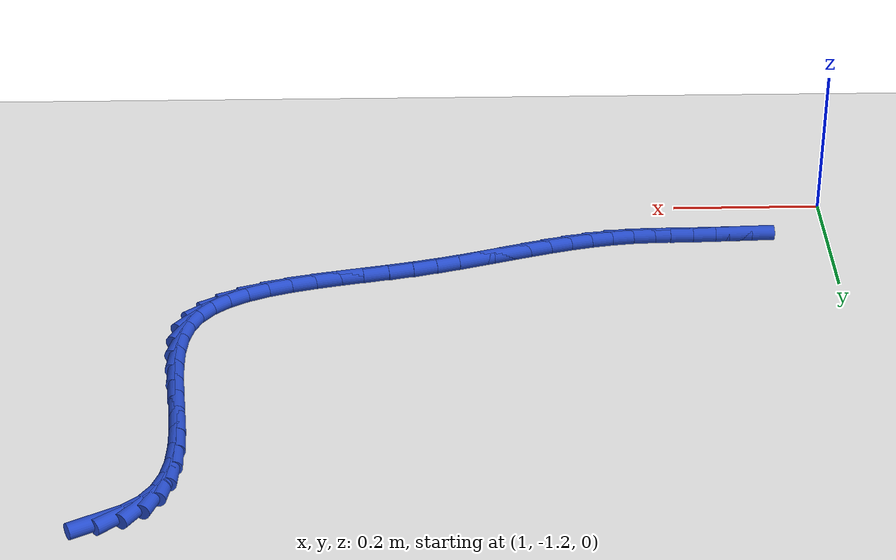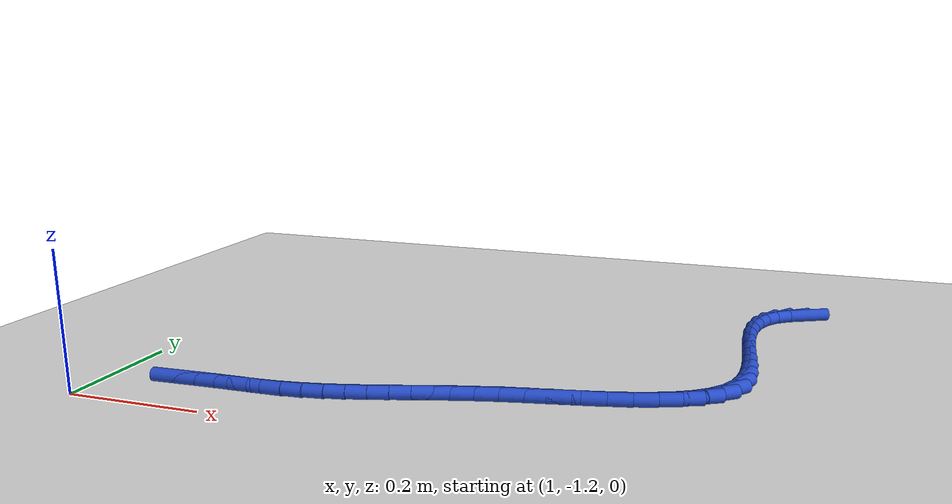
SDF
<sdf version="1.6">
 <world name="default">
  <model name="ground_plane">
   <static>1</static>
   <link name="link">
    <collision name="collision">
     <geometry><plane><normal>0 0 1</normal><size>100 100</size></plane></geometry>
     <surface><friction><ode><mu>100</mu><mu2>50</mu2></ode></friction></surface>
    </collision>
    <visual name="visual">
     <cast_shadows>0</cast_shadows>
     <geometry><plane><normal>0 0 1</normal><size>100 100</size></plane></geometry>
     <material>
      <script><uri>file://media/materials/scripts/gazebo.material</uri><name>Gazebo/WhiteGlow</name></script>
     </material>
    </visual>
   </link>
  </model>
  <model name="line">
   <link name="link_142">
    <pose>1.914173436486192 -0.504851512529708 0.01 0 1.57 0.502249874093673</pose>
    <collision name="collision">
     <geometry><cylinder><radius>0.01</radius><length>0.08</length></cylinder></geometry>
    </collision>
    <visual name="visual">
     <material>
      <script><name>Gazebo/Blue</name><uri>file://media/materials/scripts/gazebo.material</uri></script>
     </material>
     <geometry><cylinder><radius>0.01</radius><length>0.08</length></cylinder></geometry>
    </visual>
   </link>
   <link name="link_143">
    <pose>1.8893927052550739 -0.5184617698771049 0.01 0 1.57 0.7144338257849775</pose>
    <collision name="collision">
     <geometry><cylinder><radius>0.01</radius><length>0.08</length></cylinder></geometry>
    </collision>
    <visual name="visual">
     <material>
      <script><name>Gazebo/Blue</name><uri>file://media/materials/scripts/gazebo.material</uri></script>
     </material>
     <geometry><cylinder><radius>0.01</radius><length>0.08</length></cylinder></geometry>
    </visual>
   </link>
   <link name="link_144">
    <pose>1.8695080593585607 -0.5357070809737432 0.01 0 1.57 0.9855192613876577</pose>
    <collision name="collision">
     <geometry><cylinder><radius>0.01</radius><length>0.08</length></cylinder></geometry>
    </collision>
    <visual name="visual">
     <material>
      <script><name>Gazebo/Blue</name><uri>file://media/materials/scripts/gazebo.material</uri></script>
     </material>
     <geometry><cylinder><radius>0.01</radius><length>0.08</length></cylinder></geometry>
    </visual>
   </link>
   <link name="link_145">
    <pose>1.8553305297005898 -0.5570994758530008 0.01 0 1.57 1.2287504676466436</pose>
    <collision name="collision">
     <geometry><cylinder><radius>0.01</radius><length>0.08</length></cylinder></geometry>
    </collision>
    <visual name="visual">
     <material>
      <script><name>Gazebo/Blue</name><uri>file://media/materials/scripts/gazebo.material</uri></script>
     </material>
     <geometry><cylinder><radius>0.01</radius><length>0.08</length></cylinder></geometry>
    </visual>
   </link>
   <link name="link_146">
    <pose>1.8463702003581963 -0.5822660839333523 0.01 0 1.57 1.4084205650651311</pose>
    <collision name="collision">
     <geometry><cylinder><radius>0.01</radius><length>0.08</length></cylinder></geometry>
    </collision>
    <visual name="visual">
     <material>
      <script><name>Gazebo/Blue</name><uri>file://media/materials/scripts/gazebo.material</uri></script>
     </material>
     <geometry><cylinder><radius>0.01</radius><length>0.08</length></cylinder></geometry>
    </visual>
   </link>
   <link name="link_147">
    <pose>1.8417350597705493 -0.6105605302364459 0.01 0 1.57 1.5317569160823654</pose>
    <collision name="collision">
     <geometry><cylinder><radius>0.01</radius><length>0.08</length></cylinder></geometry>
    </collision>
    <visual name="visual">
     <material>
      <script><name>Gazebo/Blue</name><uri>file://media/materials/scripts/gazebo.material</uri></script>
     </material>
     <geometry><cylinder><radius>0.01</radius><length>0.08</length></cylinder></geometry>
    </visual>
   </link>
   <link name="link_148">
    <pose>1.8405329787711404 -0.6413363597888537 0.01 0 1.57 -1.5297639179016491</pose>
    <collision name="collision">
     <geometry><cylinder><radius>0.01</radius><length>0.08</length></cylinder></geometry>
    </collision>
    <visual name="visual">
     <material>
      <script><name>Gazebo/Blue</name><uri>file://media/materials/scripts/gazebo.material</uri></script>
     </material>
     <geometry><cylinder><radius>0.01</radius><length>0.08</length></cylinder></geometry>
    </visual>
   </link>
   <link name="link_149">
    <pose>1.841871828193461 -0.6739471176171508 0.01 0 1.57 -1.482631433325687</pose>
    <collision name="collision">
     <geometry><cylinder><radius>0.01</radius><length>0.08</length></cylinder></geometry>
    </collision>
    <visual name="visual">
     <material>
      <script><name>Gazebo/Blue</name><uri>file://media/materials/scripts/gazebo.material</uri></script>
     </material>
     <geometry><cylinder><radius>0.01</radius><length>0.08</length></cylinder></geometry>
    </visual>
   </link>
   <link name="link_150">
    <pose>1.8448594788710018 -0.7077463487479104 0.01 0 1.57 -1.4621925317500015</pose>
    <collision name="collision">
     <geometry><cylinder><radius>0.01</radius><length>0.08</length></cylinder></geometry>
    </collision>
    <visual name="visual">
     <material>
      <script><name>Gazebo/Blue</name><uri>file://media/materials/scripts/gazebo.material</uri></script>
     </material>
     <geometry><cylinder><radius>0.01</radius><length>0.08</length></cylinder></geometry>
    </visual>
   </link>
   <link name="link_151">
    <pose>1.8486038016372546 -0.7420875982077069 0.01 0 1.57 -1.4657752190315003</pose>
    <collision name="collision">
     <geometry><cylinder><radius>0.01</radius><length>0.08</length></cylinder></geometry>
    </collision>
    <visual name="visual">
     <material>
      <script><name>Gazebo/Blue</name><uri>file://media/materials/scripts/gazebo.material</uri></script>
     </material>
     <geometry><cylinder><radius>0.01</radius><length>0.08</length></cylinder></geometry>
    </visual>
   </link>
   <link name="link_152">
    <pose>1.8522126673257107 -0.7763244110231136 0.01 0 1.57 -1.4938629560605556</pose>
    <collision name="collision">
     <geometry><cylinder><radius>0.01</radius><length>0.08</length></cylinder></geometry>
    </collision>
    <visual name="visual">
     <material>
      <script><name>Gazebo/Blue</name><uri>file://media/materials/scripts/gazebo.material</uri></script>
     </material>
     <geometry><cylinder><radius>0.01</radius><length>0.08</length></cylinder></geometry>
    </visual>
   </link>
   <link name="link_153">
    <pose>1.8547939467698613 -0.8098103322207049 0.01 0 1.57 -1.5501824375173057</pose>
    <collision name="collision">
     <geometry><cylinder><radius>0.01</radius><length>0.08</length></cylinder></geometry>
    </collision>
    <visual name="visual">
     <material>
      <script><name>Gazebo/Blue</name><uri>file://media/materials/scripts/gazebo.material</uri></script>
     </material>
     <geometry><cylinder><radius>0.01</radius><length>0.08</length></cylinder></geometry>
    </visual>
   </link>
   <link name="link_154">
    <pose>1.855455510803198 -0.8418989068270543 0.01 0 1.57 1.4993489429522737</pose>
    <collision name="collision">
     <geometry><cylinder><radius>0.01</radius><length>0.08</length></cylinder></geometry>
    </collision>
    <visual name="visual">
     <material>
      <script><name>Gazebo/Blue</name><uri>file://media/materials/scripts/gazebo.material</uri></script>
     </material>
     <geometry><cylinder><radius>0.01</radius><length>0.08</length></cylinder></geometry>
    </visual>
   </link>
   <link name="link_155">
    <pose>1.8533052302592123 -0.8719436798687366 0.01 0 1.57 1.3599626258571125</pose>
    <collision name="collision">
     <geometry><cylinder><radius>0.01</radius><length>0.08</length></cylinder></geometry>
    </collision>
    <visual name="visual">
     <material>
      <script><name>Gazebo/Blue</name><uri>file://media/materials/scripts/gazebo.material</uri></script>
     </material>
     <geometry><cylinder><radius>0.01</radius><length>0.08</length></cylinder></geometry>
    </visual>
   </link>
   <link name="link_156">
    <pose>1.8474509759713953 -0.8992981963723239 0.01 0 1.57 1.1604871780150332</pose>
    <collision name="collision">
     <geometry><cylinder><radius>0.01</radius><length>0.08</length></cylinder></geometry>
    </collision>
    <visual name="visual">
     <material>
      <script><name>Gazebo/Blue</name><uri>file://media/materials/scripts/gazebo.material</uri></script>
     </material>
     <geometry><cylinder><radius>0.01</radius><length>0.08</length></cylinder></geometry>
    </visual>
   </link>
   <link name="link_157">
    <pose>1.8370026291247181 -0.9233174506579057 0.01 0 1.57 0.919939099110937</pose>
    <collision name="collision">
     <geometry><cylinder><radius>0.01</radius><length>0.08</length></cylinder></geometry>
    </collision>
    <visual name="visual">
     <material>
      <script><name>Gazebo/Blue</name><uri>file://media/materials/scripts/gazebo.material</uri></script>
     </material>
     <geometry><cylinder><radius>0.01</radius><length>0.08</length></cylinder></geometry>
    </visual>
   </link>
   <link name="link_158">
    <pose>1.8215037064311927 -0.9436690516125044 0.01 0 1.57 0.7051344208503111</pose>
    <collision name="collision">
     <geometry><cylinder><radius>0.01</radius><length>0.08</length></cylinder></geometry>
    </collision>
    <visual name="visual">
     <material>
      <script><name>Gazebo/Blue</name><uri>file://media/materials/scripts/gazebo.material</uri></script>
     </material>
     <geometry><cylinder><radius>0.01</radius><length>0.08</length></cylinder></geometry>
    </visual>
   </link>
   <link name="link_159">
    <pose>1.801468902727103 -0.9607207454730631 0.01 0 1.57 0.5361139585434486</pose>
    <collision name="collision">
     <geometry><cylinder><radius>0.01</radius><length>0.08</length></cylinder></geometry>
    </collision>
    <visual name="visual">
     <material>
      <script><name>Gazebo/Blue</name><uri>file://media/materials/scripts/gazebo.material</uri></script>
     </material>
     <geometry><cylinder><radius>0.01</radius><length>0.08</length></cylinder></geometry>
    </visual>
   </link>
   <link name="link_160">
    <pose>1.7775448918431593 -0.9749354241774967 0.01 0 1.57 0.41102521632800504</pose>
    <collision name="collision">
     <geometry><cylinder><radius>0.01</radius><length>0.08</length></cylinder></geometry>
    </collision>
    <visual name="visual">
     <material>
      <script><name>Gazebo/Blue</name><uri>file://media/materials/scripts/gazebo.material</uri></script>
     </material>
     <geometry><cylinder><radius>0.01</radius><length>0.08</length></cylinder></geometry>
    </visual>
   </link>
   <link name="link_161">
    <pose>1.7503783476100698 -0.9867759796637201 0.01 0 1.57 0.32200826210206196</pose>
    <collision name="collision">
     <geometry><cylinder><radius>0.01</radius><length>0.08</length></cylinder></geometry>
    </collision>
    <visual name="visual">
     <material>
      <script><name>Gazebo/Blue</name><uri>file://media/materials/scripts/gazebo.material</uri></script>
     </material>
     <geometry><cylinder><radius>0.01</radius><length>0.08</length></cylinder></geometry>
    </visual>
   </link>
   <link name="link_162">
    <pose>1.7206159438585436 -0.9967053038696486 0.01 0 1.57 0.26132534452642153</pose>
    <collision name="collision">
     <geometry><cylinder><radius>0.01</radius><length>0.08</length></cylinder></geometry>
    </collision>
    <visual name="visual">
     <material>
      <script><name>Gazebo/Blue</name><uri>file://media/materials/scripts/gazebo.material</uri></script>
     </material>
     <geometry><cylinder><radius>0.01</radius><length>0.08</length></cylinder></geometry>
    </visual>
   </link>
   <link name="link_163">
    <pose>1.6889043544192912 -1.0051862887331962 0.01 0 1.57 0.22325575137945144</pose>
    <collision name="collision">
     <geometry><cylinder><radius>0.01</radius><length>0.08</length></cylinder></geometry>
    </collision>
    <visual name="visual">
     <material>
      <script><name>Gazebo/Blue</name><uri>file://media/materials/scripts/gazebo.material</uri></script>
     </material>
     <geometry><cylinder><radius>0.01</radius><length>0.08</length></cylinder></geometry>
    </visual>
   </link>
   <link name="link_164">
    <pose>1.655890253123021 -1.0126818261922783 0.01 0 1.57 0.2042112903973072</pose>
    <collision name="collision">
     <geometry><cylinder><radius>0.01</radius><length>0.08</length></cylinder></geometry>
    </collision>
    <visual name="visual">
     <material>
      <script><name>Gazebo/Blue</name><uri>file://media/materials/scripts/gazebo.material</uri></script>
     </material>
     <geometry><cylinder><radius>0.01</radius><length>0.08</length></cylinder></geometry>
    </visual>
   </link>
   <link name="link_165">
    <pose>1.6222203138004434 -1.0196548081848098 0.01 0 1.57 0.20245794711916582</pose>
    <collision name="collision">
     <geometry><cylinder><radius>0.01</radius><length>0.08</length></cylinder></geometry>
    </collision>
    <visual name="visual">
     <material>
      <script><name>Gazebo/Blue</name><uri>file://media/materials/scripts/gazebo.material</uri></script>
     </material>
     <geometry><cylinder><radius>0.01</radius><length>0.08</length></cylinder></geometry>
    </visual>
   </link>
   <link name="link_166">
    <pose>1.5885412102822665 -1.0265681266487054 0.01 0 1.57 0.21791811164858632</pose>
    <collision name="collision">
     <geometry><cylinder><radius>0.01</radius><length>0.08</length></cylinder></geometry>
    </collision>
    <visual name="visual">
     <material>
      <script><name>Gazebo/Blue</name><uri>file://media/materials/scripts/gazebo.material</uri></script>
     </material>
     <geometry><cylinder><radius>0.01</radius><length>0.08</length></cylinder></geometry>
    </visual>
   </link>
   <link name="link_167">
    <pose>1.5554996163991999 -1.0338846735218803 0.01 0 1.57 0.24873737398086015</pose>
    <collision name="collision">
     <geometry><cylinder><radius>0.01</radius><length>0.08</length></cylinder></geometry>
    </collision>
    <visual name="visual">
     <material>
      <script><name>Gazebo/Blue</name><uri>file://media/materials/scripts/gazebo.material</uri></script>
     </material>
     <geometry><cylinder><radius>0.01</radius><length>0.08</length></cylinder></geometry>
    </visual>
   </link>
   <link name="link_168">
    <pose>1.5236395565345946 -1.0419770460627455 0.01 0 1.57 0.2775570150027388</pose>
    <collision name="collision">
     <geometry><cylinder><radius>0.01</radius><length>0.08</length></cylinder></geometry>
    </collision>
    <visual name="visual">
     <material>
      <script><name>Gazebo/Blue</name><uri>file://media/materials/scripts/gazebo.material</uri></script>
     </material>
     <geometry><cylinder><radius>0.01</radius><length>0.08</length></cylinder></geometry>
    </visual>
   </link>
   <link name="link_169">
    <pose>1.492942487957956 -1.0507229843380683 0.01 0 1.57 0.29716181944738745</pose>
    <collision name="collision">
     <geometry><cylinder><radius>0.01</radius><length>0.08</length></cylinder></geometry>
    </collision>
    <visual name="visual">
     <material>
      <script><name>Gazebo/Blue</name><uri>file://media/materials/scripts/gazebo.material</uri></script>
     </material>
     <geometry><cylinder><radius>0.01</radius><length>0.08</length></cylinder></geometry>
    </visual>
   </link>
   <link name="link_170">
    <pose>1.4631981364355515 -1.059831573491661 0.01 0 1.57 0.3065570261156313</pose>
    <collision name="collision">
     <geometry><cylinder><radius>0.01</radius><length>0.08</length></cylinder></geometry>
    </collision>
    <visual name="visual">
     <material>
      <script><name>Gazebo/Blue</name><uri>file://media/materials/scripts/gazebo.material</uri></script>
     </material>
     <geometry><cylinder><radius>0.01</radius><length>0.08</length></cylinder></geometry>
    </visual>
   </link>
   <link name="link_171">
    <pose>1.4341960655973698 -1.0690117560455892 0.01 0 1.57 0.30492425690434805</pose>
    <collision name="collision">
     <geometry><cylinder><radius>0.01</radius><length>0.08</length></cylinder></geometry>
    </collision>
    <visual name="visual">
     <material>
      <script><name>Gazebo/Blue</name><uri>file://media/materials/scripts/gazebo.material</uri></script>
     </material>
     <geometry><cylinder><radius>0.01</radius><length>0.08</length></cylinder></geometry>
    </visual>
   </link>
   <link name="link_172">
    <pose>1.4057258390733982 -1.0779724745219181 0.01 0 1.57 0.2916377151185282</pose>
    <collision name="collision">
     <geometry><cylinder><radius>0.01</radius><length>0.08</length></cylinder></geometry>
    </collision>
    <visual name="visual">
     <material>
      <script><name>Gazebo/Blue</name><uri>file://media/materials/scripts/gazebo.material</uri></script>
     </material>
     <geometry><cylinder><radius>0.01</radius><length>0.08</length></cylinder></geometry>
    </visual>
   </link>
   <link name="link_173">
    <pose>1.3775770204936237 -1.0864226714427145 0.01 0 1.57 0.2663161957123218</pose>
    <collision name="collision">
     <geometry><cylinder><radius>0.01</radius><length>0.08</length></cylinder></geometry>
    </collision>
    <visual name="visual">
     <material>
      <script><name>Gazebo/Blue</name><uri>file://media/materials/scripts/gazebo.material</uri></script>
     </material>
     <geometry><cylinder><radius>0.01</radius><length>0.08</length></cylinder></geometry>
    </visual>
   </link>
   <link name="link_174">
    <pose>1.3495391734880344 -1.0940712893300442 0.01 0 1.57 0.22891537398521442</pose>
    <collision name="collision">
     <geometry><cylinder><radius>0.01</radius><length>0.08</length></cylinder></geometry>
    </collision>
    <visual name="visual">
     <material>
      <script><name>Gazebo/Blue</name><uri>file://media/materials/scripts/gazebo.material</uri></script>
     </material>
     <geometry><cylinder><radius>0.01</radius><length>0.08</length></cylinder></geometry>
    </visual>
   </link>
   <link name="link_175">
    <pose>1.3214018616866183 -1.1006272707059728 0.01 0 1.57 0.17985577446026785</pose>
    <collision name="collision">
     <geometry><cylinder><radius>0.01</radius><length>0.08</length></cylinder></geometry>
    </collision>
    <visual name="visual">
     <material>
      <script><name>Gazebo/Blue</name><uri>file://media/materials/scripts/gazebo.material</uri></script>
     </material>
     <geometry><cylinder><radius>0.01</radius><length>0.08</length></cylinder></geometry>
    </visual>
   </link>
   <link name="link_176">
    <pose>1.2929546487193626 -1.1057995580925666 0.01 0 1.57 0.1201581487813778</pose>
    <collision name="collision">
     <geometry><cylinder><radius>0.01</radius><length>0.08</length></cylinder></geometry>
    </collision>
    <visual name="visual">
     <material>
      <script><name>Gazebo/Blue</name><uri>file://media/materials/scripts/gazebo.material</uri></script>
     </material>
     <geometry><cylinder><radius>0.01</radius><length>0.08</length></cylinder></geometry>
    </visual>
   </link>
   <link name="link_177">
    <pose>1.263987098216254 -1.1092970940118914 0.01 0 1.57 0.05770810565380377</pose>
    <collision name="collision">
     <geometry><cylinder><radius>0.01</radius><length>0.08</length></cylinder></geometry>
    </collision>
    <visual name="visual">
     <material>
      <script><name>Gazebo/Blue</name><uri>file://media/materials/scripts/gazebo.material</uri></script>
     </material>
     <geometry><cylinder><radius>0.01</radius><length>0.08</length></cylinder></geometry>
    </visual>
   </link>
   <link name="link_178">
    <pose>1.234354075764418 -1.1110090604358267 0.01 0 1.57 0.02046214246473146</pose>
    <collision name="collision">
     <geometry><cylinder><radius>0.01</radius><length>0.08</length></cylinder></geometry>
    </collision>
    <visual name="visual">
     <material>
      <script><name>Gazebo/Blue</name><uri>file://media/materials/scripts/gazebo.material</uri></script>
     </material>
     <geometry><cylinder><radius>0.01</radius><length>0.08</length></cylinder></geometry>
    </visual>
   </link>
   <link name="link_179">
    <pose>1.204200838317457 -1.1116261464031256 0.01 0 1.57 0.01426706229555331</pose>
    <collision name="collision">
     <geometry><cylinder><radius>0.01</radius><length>0.08</length></cylinder></geometry>
    </collision>
    <visual name="visual">
     <material>
      <script><name>Gazebo/Blue</name><uri>file://media/materials/scripts/gazebo.material</uri></script>
     </material>
     <geometry><cylinder><radius>0.01</radius><length>0.08</length></cylinder></geometry>
    </visual>
   </link>
   <link name="link_180">
    <pose>1.1737531486275192 -1.1120605749649304 0.01 0 1.57 0.027979532512349164</pose>
    <collision name="collision">
     <geometry><cylinder><radius>0.01</radius><length>0.08</length></cylinder></geometry>
    </collision>
    <visual name="visual">
     <material>
      <script><name>Gazebo/Blue</name><uri>file://media/materials/scripts/gazebo.material</uri></script>
     </material>
     <geometry><cylinder><radius>0.01</radius><length>0.08</length></cylinder></geometry>
    </visual>
   </link>
   <link name="link_181">
    <pose>1.143188385835134 -1.112915985971574 0.01 0 1.57 0.03788096055060005</pose>
    <collision name="collision">
     <geometry><cylinder><radius>0.01</radius><length>0.08</length></cylinder></geometry>
    </collision>
    <visual name="visual">
     <material>
      <script><name>Gazebo/Blue</name><uri>file://media/materials/scripts/gazebo.material</uri></script>
     </material>
     <geometry><cylinder><radius>0.01</radius><length>0.08</length></cylinder></geometry>
    </visual>
   </link>
   <link name="link_182">
    <pose>1.1125710865148273 -1.1140763537622922 0.01 0 1.57 0.040697606038069316</pose>
    <collision name="collision">
     <geometry><cylinder><radius>0.01</radius><length>0.08</length></cylinder></geometry>
    </collision>
    <visual name="visual">
     <material>
      <script><name>Gazebo/Blue</name><uri>file://media/materials/scripts/gazebo.material</uri></script>
     </material>
     <geometry><cylinder><radius>0.01</radius><length>0.08</length></cylinder></geometry>
    </visual>
   </link>
  </model>
 </world>
</sdf>
